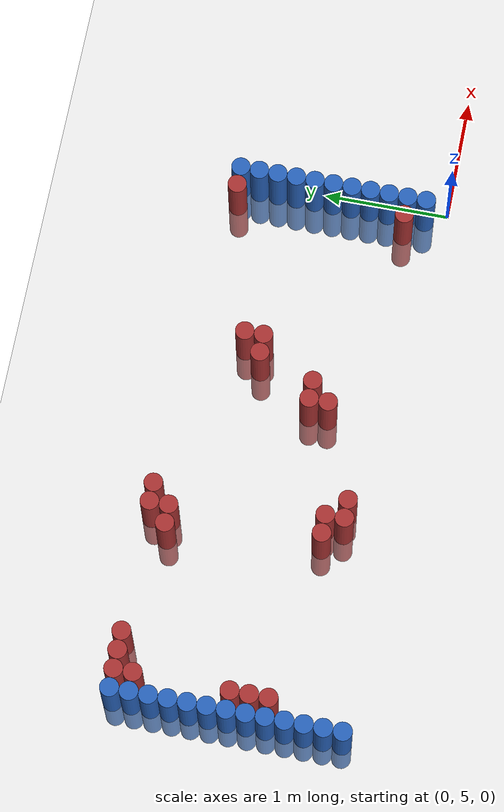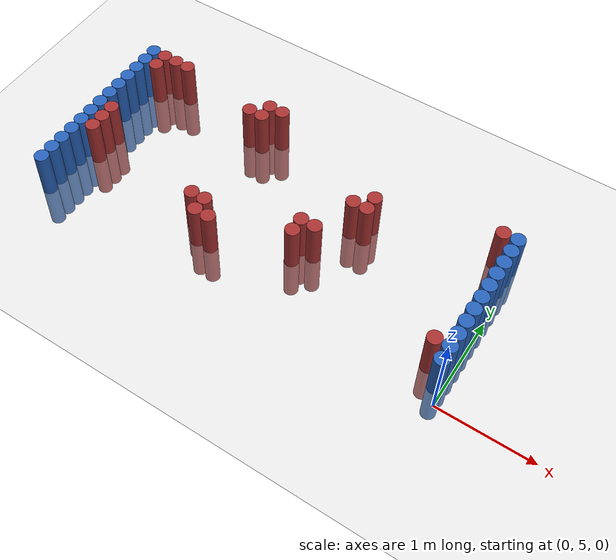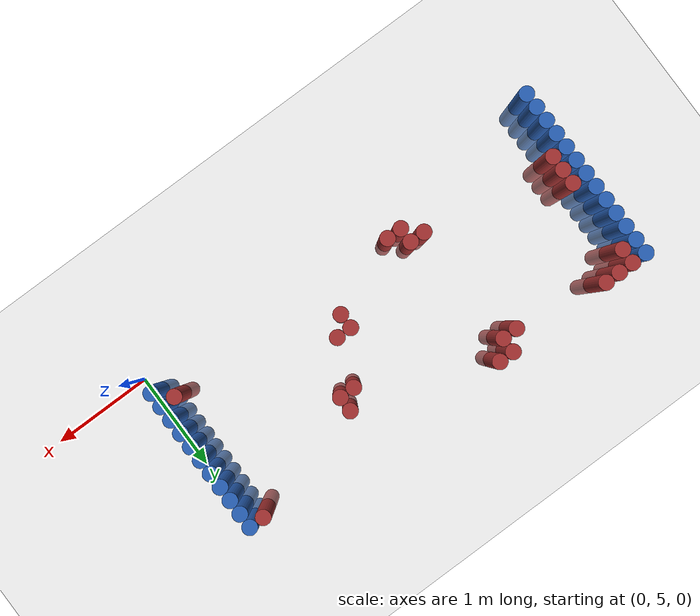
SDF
<sdf version="1.6">
 <world name="default">
  <model name="ground_plane">
   <static>1</static>
   <link name="link">
    <collision name="collision">
     <geometry><plane><normal>0 0 1</normal><size>100 100</size></plane></geometry>
     <surface><friction><ode><mu>100</mu><mu2>50</mu2></ode></friction></surface>
    </collision>
    <visual name="visual">
     <cast_shadows>0</cast_shadows>
     <geometry><plane><normal>0 0 1</normal><size>100 100</size></plane></geometry>
     <material>
      <script><uri>file://media/materials/scripts/gazebo.material</uri><name>Gazebo/Grey</name></script>
     </material>
    </visual>
   </link>
  </model>
  <model name="unit_cylinder_95">
   <static>1</static>
   <pose>-4.425000 5.025000 0.000000 0.000000 0.000000 0.000000</pose>
   <link name="link">
    <inertial>
     <mass>1</mass>
     <inertia><ixx>0.145833</ixx><ixy>0</ixy><ixz>0</ixz><iyy>0.145833</iyy><iyz>0</iyz><izz>0.125</izz></inertia>
    </inertial>
    <collision name="collision">
     <geometry><cylinder><radius>0.075000</radius><length>1</length></cylinder></geometry>
    </collision>
    <visual name="visual">
     <geometry><cylinder><radius>0.075000</radius><length>1</length></cylinder></geometry>
     <material>
      <ambient>0.152000 0.379000 0.720000 1</ambient>
      <diffuse>0.152000 0.379000 0.720000 1</diffuse>
     </material>
     <material>
      <script><name>Gazebo/Grey</name><uri>file://media/materials/scripts/gazebo.material</uri></script>
     </material>
    </visual>
   </link>
  </model>
  <model name="unit_cylinder_96">
   <static>1</static>
   <pose>-4.425000 5.175000 0.000000 0.000000 0.000000 0.000000</pose>
   <link name="link">
    <inertial>
     <mass>1</mass>
     <inertia><ixx>0.145833</ixx><ixy>0</ixy><ixz>0</ixz><iyy>0.145833</iyy><iyz>0</iyz><izz>0.125</izz></inertia>
    </inertial>
    <collision name="collision">
     <geometry><cylinder><radius>0.075000</radius><length>1</length></cylinder></geometry>
    </collision>
    <visual name="visual">
     <geometry><cylinder><radius>0.075000</radius><length>1</length></cylinder></geometry>
     <material>
      <ambient>0.152000 0.379000 0.720000 1</ambient>
      <diffuse>0.152000 0.379000 0.720000 1</diffuse>
     </material>
     <material>
      <script><name>Gazebo/Grey</name><uri>file://media/materials/scripts/gazebo.material</uri></script>
     </material>
    </visual>
   </link>
  </model>
  <model name="unit_cylinder_97">
   <static>1</static>
   <pose>-4.425000 5.325000 0.000000 0.000000 0.000000 0.000000</pose>
   <link name="link">
    <inertial>
     <mass>1</mass>
     <inertia><ixx>0.145833</ixx><ixy>0</ixy><ixz>0</ixz><iyy>0.145833</iyy><iyz>0</iyz><izz>0.125</izz></inertia>
    </inertial>
    <collision name="collision">
     <geometry><cylinder><radius>0.075000</radius><length>1</length></cylinder></geometry>
    </collision>
    <visual name="visual">
     <geometry><cylinder><radius>0.075000</radius><length>1</length></cylinder></geometry>
     <material>
      <ambient>0.152000 0.379000 0.720000 1</ambient>
      <diffuse>0.152000 0.379000 0.720000 1</diffuse>
     </material>
     <material>
      <script><name>Gazebo/Grey</name><uri>file://media/materials/scripts/gazebo.material</uri></script>
     </material>
    </visual>
   </link>
  </model>
  <model name="unit_cylinder_98">
   <static>1</static>
   <pose>-4.425000 5.475000 0.000000 0.000000 0.000000 0.000000</pose>
   <link name="link">
    <inertial>
     <mass>1</mass>
     <inertia><ixx>0.145833</ixx><ixy>0</ixy><ixz>0</ixz><iyy>0.145833</iyy><iyz>0</iyz><izz>0.125</izz></inertia>
    </inertial>
    <collision name="collision">
     <geometry><cylinder><radius>0.075000</radius><length>1</length></cylinder></geometry>
    </collision>
    <visual name="visual">
     <geometry><cylinder><radius>0.075000</radius><length>1</length></cylinder></geometry>
     <material>
      <ambient>0.152000 0.379000 0.720000 1</ambient>
      <diffuse>0.152000 0.379000 0.720000 1</diffuse>
     </material>
     <material>
      <script><name>Gazebo/Grey</name><uri>file://media/materials/scripts/gazebo.material</uri></script>
     </material>
    </visual>
   </link>
  </model>
  <model name="unit_cylinder_99">
   <static>1</static>
   <pose>-4.425000 5.625000 0.000000 0.000000 0.000000 0.000000</pose>
   <link name="link">
    <inertial>
     <mass>1</mass>
     <inertia><ixx>0.145833</ixx><ixy>0</ixy><ixz>0</ixz><iyy>0.145833</iyy><iyz>0</iyz><izz>0.125</izz></inertia>
    </inertial>
    <collision name="collision">
     <geometry><cylinder><radius>0.075000</radius><length>1</length></cylinder></geometry>
    </collision>
    <visual name="visual">
     <geometry><cylinder><radius>0.075000</radius><length>1</length></cylinder></geometry>
     <material>
      <ambient>0.152000 0.379000 0.720000 1</ambient>
      <diffuse>0.152000 0.379000 0.720000 1</diffuse>
     </material>
     <material>
      <script><name>Gazebo/Grey</name><uri>file://media/materials/scripts/gazebo.material</uri></script>
     </material>
    </visual>
   </link>
  </model>
  <model name="unit_cylinder_100">
   <static>1</static>
   <pose>-4.425000 5.775000 0.000000 0.000000 0.000000 0.000000</pose>
   <link name="link">
    <inertial>
     <mass>1</mass>
     <inertia><ixx>0.145833</ixx><ixy>0</ixy><ixz>0</ixz><iyy>0.145833</iyy><iyz>0</iyz><izz>0.125</izz></inertia>
    </inertial>
    <collision name="collision">
     <geometry><cylinder><radius>0.075000</radius><length>1</length></cylinder></geometry>
    </collision>
    <visual name="visual">
     <geometry><cylinder><radius>0.075000</radius><length>1</length></cylinder></geometry>
     <material>
      <ambient>0.152000 0.379000 0.720000 1</ambient>
      <diffuse>0.152000 0.379000 0.720000 1</diffuse>
     </material>
     <material>
      <script><name>Gazebo/Grey</name><uri>file://media/materials/scripts/gazebo.material</uri></script>
     </material>
    </visual>
   </link>
  </model>
  <model name="unit_cylinder_101">
   <static>1</static>
   <pose>-4.425000 5.925000 0.000000 0.000000 0.000000 0.000000</pose>
   <link name="link">
    <inertial>
     <mass>1</mass>
     <inertia><ixx>0.145833</ixx><ixy>0</ixy><ixz>0</ixz><iyy>0.145833</iyy><iyz>0</iyz><izz>0.125</izz></inertia>
    </inertial>
    <collision name="collision">
     <geometry><cylinder><radius>0.075000</radius><length>1</length></cylinder></geometry>
    </collision>
    <visual name="visual">
     <geometry><cylinder><radius>0.075000</radius><length>1</length></cylinder></geometry>
     <material>
      <ambient>0.152000 0.379000 0.720000 1</ambient>
      <diffuse>0.152000 0.379000 0.720000 1</diffuse>
     </material>
     <material>
      <script><name>Gazebo/Grey</name><uri>file://media/materials/scripts/gazebo.material</uri></script>
     </material>
    </visual>
   </link>
  </model>
  <model name="unit_cylinder_102">
   <static>1</static>
   <pose>-4.425000 6.075000 0.000000 0.000000 0.000000 0.000000</pose>
   <link name="link">
    <inertial>
     <mass>1</mass>
     <inertia><ixx>0.145833</ixx><ixy>0</ixy><ixz>0</ixz><iyy>0.145833</iyy><iyz>0</iyz><izz>0.125</izz></inertia>
    </inertial>
    <collision name="collision">
     <geometry><cylinder><radius>0.075000</radius><length>1</length></cylinder></geometry>
    </collision>
    <visual name="visual">
     <geometry><cylinder><radius>0.075000</radius><length>1</length></cylinder></geometry>
     <material>
      <ambient>0.152000 0.379000 0.720000 1</ambient>
      <diffuse>0.152000 0.379000 0.720000 1</diffuse>
     </material>
     <material>
      <script><name>Gazebo/Grey</name><uri>file://media/materials/scripts/gazebo.material</uri></script>
     </material>
    </visual>
   </link>
  </model>
  <model name="unit_cylinder_103">
   <static>1</static>
   <pose>-4.425000 6.225000 0.000000 0.000000 0.000000 0.000000</pose>
   <link name="link">
    <inertial>
     <mass>1</mass>
     <inertia><ixx>0.145833</ixx><ixy>0</ixy><ixz>0</ixz><iyy>0.145833</iyy><iyz>0</iyz><izz>0.125</izz></inertia>
    </inertial>
    <collision name="collision">
     <geometry><cylinder><radius>0.075000</radius><length>1</length></cylinder></geometry>
    </collision>
    <visual name="visual">
     <geometry><cylinder><radius>0.075000</radius><length>1</length></cylinder></geometry>
     <material>
      <ambient>0.152000 0.379000 0.720000 1</ambient>
      <diffuse>0.152000 0.379000 0.720000 1</diffuse>
     </material>
     <material>
      <script><name>Gazebo/Grey</name><uri>file://media/materials/scripts/gazebo.material</uri></script>
     </material>
    </visual>
   </link>
  </model>
  <model name="unit_cylinder_104">
   <static>1</static>
   <pose>-4.425000 6.375000 0.000000 0.000000 0.000000 0.000000</pose>
   <link name="link">
    <inertial>
     <mass>1</mass>
     <inertia><ixx>0.145833</ixx><ixy>0</ixy><ixz>0</ixz><iyy>0.145833</iyy><iyz>0</iyz><izz>0.125</izz></inertia>
    </inertial>
    <collision name="collision">
     <geometry><cylinder><radius>0.075000</radius><length>1</length></cylinder></geometry>
    </collision>
    <visual name="visual">
     <geometry><cylinder><radius>0.075000</radius><length>1</length></cylinder></geometry>
     <material>
      <ambient>0.152000 0.379000 0.720000 1</ambient>
      <diffuse>0.152000 0.379000 0.720000 1</diffuse>
     </material>
     <material>
      <script><name>Gazebo/Grey</name><uri>file://media/materials/scripts/gazebo.material</uri></script>
     </material>
    </visual>
   </link>
  </model>
  <model name="unit_cylinder_105">
   <static>1</static>
   <pose>-4.425000 6.525000 0.000000 0.000000 0.000000 0.000000</pose>
   <link name="link">
    <inertial>
     <mass>1</mass>
     <inertia><ixx>0.145833</ixx><ixy>0</ixy><ixz>0</ixz><iyy>0.145833</iyy><iyz>0</iyz><izz>0.125</izz></inertia>
    </inertial>
    <collision name="collision">
     <geometry><cylinder><radius>0.075000</radius><length>1</length></cylinder></geometry>
    </collision>
    <visual name="visual">
     <geometry><cylinder><radius>0.075000</radius><length>1</length></cylinder></geometry>
     <material>
      <ambient>0.152000 0.379000 0.720000 1</ambient>
      <diffuse>0.152000 0.379000 0.720000 1</diffuse>
     </material>
     <material>
      <script><name>Gazebo/Grey</name><uri>file://media/materials/scripts/gazebo.material</uri></script>
     </material>
    </visual>
   </link>
  </model>
  <model name="unit_cylinder_106">
   <static>1</static>
   <pose>-4.425000 6.675000 0.000000 0.000000 0.000000 0.000000</pose>
   <link name="link">
    <inertial>
     <mass>1</mass>
     <inertia><ixx>0.145833</ixx><ixy>0</ixy><ixz>0</ixz><iyy>0.145833</iyy><iyz>0</iyz><izz>0.125</izz></inertia>
    </inertial>
    <collision name="collision">
     <geometry><cylinder><radius>0.075000</radius><length>1</length></cylinder></geometry>
    </collision>
    <visual name="visual">
     <geometry><cylinder><radius>0.075000</radius><length>1</length></cylinder></geometry>
     <material>
      <ambient>0.152000 0.379000 0.720000 1</ambient>
      <diffuse>0.152000 0.379000 0.720000 1</diffuse>
     </material>
     <material>
      <script><name>Gazebo/Grey</name><uri>file://media/materials/scripts/gazebo.material</uri></script>
     </material>
    </visual>
   </link>
  </model>
  <model name="unit_cylinder_107">
   <static>1</static>
   <pose>-4.425000 6.825000 0.000000 0.000000 0.000000 0.000000</pose>
   <link name="link">
    <inertial>
     <mass>1</mass>
     <inertia><ixx>0.145833</ixx><ixy>0</ixy><ixz>0</ixz><iyy>0.145833</iyy><iyz>0</iyz><izz>0.125</izz></inertia>
    </inertial>
    <collision name="collision">
     <geometry><cylinder><radius>0.075000</radius><length>1</length></cylinder></geometry>
    </collision>
    <visual name="visual">
     <geometry><cylinder><radius>0.075000</radius><length>1</length></cylinder></geometry>
     <material>
      <ambient>0.152000 0.379000 0.720000 1</ambient>
      <diffuse>0.152000 0.379000 0.720000 1</diffuse>
     </material>
     <material>
      <script><name>Gazebo/Grey</name><uri>file://media/materials/scripts/gazebo.material</uri></script>
     </material>
    </visual>
   </link>
  </model>
  <model name="unit_cylinder_126">
   <static>1</static>
   <pose>-4.275000 5.625000 0.000000 0.000000 0.000000 0.000000</pose>
   <link name="link">
    <inertial>
     <mass>1</mass>
     <inertia><ixx>0.145833</ixx><ixy>0</ixy><ixz>0</ixz><iyy>0.145833</iyy><iyz>0</iyz><izz>0.125</izz></inertia>
    </inertial>
    <collision name="collision">
     <geometry><cylinder><radius>0.075000</radius><length>1</length></cylinder></geometry>
    </collision>
    <visual name="visual">
     <geometry><cylinder><radius>0.075000</radius><length>1</length></cylinder></geometry>
     <material>
      <ambient>0.648000 0.192000 0.192000 1</ambient>
      <diffuse>0.648000 0.192000 0.192000 1</diffuse>
     </material>
     <material>
      <script><name>Gazebo/Grey</name><uri>file://media/materials/scripts/gazebo.material</uri></script>
     </material>
    </visual>
   </link>
  </model>
  <model name="unit_cylinder_127">
   <static>1</static>
   <pose>-4.275000 5.775000 0.000000 0.000000 0.000000 0.000000</pose>
   <link name="link">
    <inertial>
     <mass>1</mass>
     <inertia><ixx>0.145833</ixx><ixy>0</ixy><ixz>0</ixz><iyy>0.145833</iyy><iyz>0</iyz><izz>0.125</izz></inertia>
    </inertial>
    <collision name="collision">
     <geometry><cylinder><radius>0.075000</radius><length>1</length></cylinder></geometry>
    </collision>
    <visual name="visual">
     <geometry><cylinder><radius>0.075000</radius><length>1</length></cylinder></geometry>
     <material>
      <ambient>0.648000 0.192000 0.192000 1</ambient>
      <diffuse>0.648000 0.192000 0.192000 1</diffuse>
     </material>
     <material>
      <script><name>Gazebo/Grey</name><uri>file://media/materials/scripts/gazebo.material</uri></script>
     </material>
    </visual>
   </link>
  </model>
  <model name="unit_cylinder_128">
   <static>1</static>
   <pose>-4.275000 5.925000 0.000000 0.000000 0.000000 0.000000</pose>
   <link name="link">
    <inertial>
     <mass>1</mass>
     <inertia><ixx>0.145833</ixx><ixy>0</ixy><ixz>0</ixz><iyy>0.145833</iyy><iyz>0</iyz><izz>0.125</izz></inertia>
    </inertial>
    <collision name="collision">
     <geometry><cylinder><radius>0.075000</radius><length>1</length></cylinder></geometry>
    </collision>
    <visual name="visual">
     <geometry><cylinder><radius>0.075000</radius><length>1</length></cylinder></geometry>
     <material>
      <ambient>0.648000 0.192000 0.192000 1</ambient>
      <diffuse>0.648000 0.192000 0.192000 1</diffuse>
     </material>
     <material>
      <script><name>Gazebo/Grey</name><uri>file://media/materials/scripts/gazebo.material</uri></script>
     </material>
    </visual>
   </link>
  </model>
  <model name="unit_cylinder_129">
   <static>1</static>
   <pose>-4.275000 6.675000 0.000000 0.000000 0.000000 0.000000</pose>
   <link name="link">
    <inertial>
     <mass>1</mass>
     <inertia><ixx>0.145833</ixx><ixy>0</ixy><ixz>0</ixz><iyy>0.145833</iyy><iyz>0</iyz><izz>0.125</izz></inertia>
    </inertial>
    <collision name="collision">
     <geometry><cylinder><radius>0.075000</radius><length>1</length></cylinder></geometry>
    </collision>
    <visual name="visual">
     <geometry><cylinder><radius>0.075000</radius><length>1</length></cylinder></geometry>
     <material>
      <ambient>0.648000 0.192000 0.192000 1</ambient>
      <diffuse>0.648000 0.192000 0.192000 1</diffuse>
     </material>
     <material>
      <script><name>Gazebo/Grey</name><uri>file://media/materials/scripts/gazebo.material</uri></script>
     </material>
    </visual>
   </link>
  </model>
  <model name="unit_cylinder_130">
   <static>1</static>
   <pose>-4.275000 6.825000 0.000000 0.000000 0.000000 0.000000</pose>
   <link name="link">
    <inertial>
     <mass>1</mass>
     <inertia><ixx>0.145833</ixx><ixy>0</ixy><ixz>0</ixz><iyy>0.145833</iyy><iyz>0</iyz><izz>0.125</izz></inertia>
    </inertial>
    <collision name="collision">
     <geometry><cylinder><radius>0.075000</radius><length>1</length></cylinder></geometry>
    </collision>
    <visual name="visual">
     <geometry><cylinder><radius>0.075000</radius><length>1</length></cylinder></geometry>
     <material>
      <ambient>0.648000 0.192000 0.192000 1</ambient>
      <diffuse>0.648000 0.192000 0.192000 1</diffuse>
     </material>
     <material>
      <script><name>Gazebo/Grey</name><uri>file://media/materials/scripts/gazebo.material</uri></script>
     </material>
    </visual>
   </link>
  </model>
  <model name="unit_cylinder_140">
   <static>1</static>
   <pose>-4.125000 6.825000 0.000000 0.000000 0.000000 0.000000</pose>
   <link name="link">
    <inertial>
     <mass>1</mass>
     <inertia><ixx>0.145833</ixx><ixy>0</ixy><ixz>0</ixz><iyy>0.145833</iyy><iyz>0</iyz><izz>0.125</izz></inertia>
    </inertial>
    <collision name="collision">
     <geometry><cylinder><radius>0.075000</radius><length>1</length></cylinder></geometry>
    </collision>
    <visual name="visual">
     <geometry><cylinder><radius>0.075000</radius><length>1</length></cylinder></geometry>
     <material>
      <ambient>0.648000 0.192000 0.192000 1</ambient>
      <diffuse>0.648000 0.192000 0.192000 1</diffuse>
     </material>
     <material>
      <script><name>Gazebo/Grey</name><uri>file://media/materials/scripts/gazebo.material</uri></script>
     </material>
    </visual>
   </link>
  </model>
  <model name="unit_cylinder_145">
   <static>1</static>
   <pose>-3.975000 6.825000 0.000000 0.000000 0.000000 0.000000</pose>
   <link name="link">
    <inertial>
     <mass>1</mass>
     <inertia><ixx>0.145833</ixx><ixy>0</ixy><ixz>0</ixz><iyy>0.145833</iyy><iyz>0</iyz><izz>0.125</izz></inertia>
    </inertial>
    <collision name="collision">
     <geometry><cylinder><radius>0.075000</radius><length>1</length></cylinder></geometry>
    </collision>
    <visual name="visual">
     <geometry><cylinder><radius>0.075000</radius><length>1</length></cylinder></geometry>
     <material>
      <ambient>0.648000 0.192000 0.192000 1</ambient>
      <diffuse>0.648000 0.192000 0.192000 1</diffuse>
     </material>
     <material>
      <script><name>Gazebo/Grey</name><uri>file://media/materials/scripts/gazebo.material</uri></script>
     </material>
    </visual>
   </link>
  </model>
  <model name="unit_cylinder_169">
   <static>1</static>
   <pose>-3.075000 6.675000 0.000000 0.000000 0.000000 0.000000</pose>
   <link name="link">
    <inertial>
     <mass>1</mass>
     <inertia><ixx>0.145833</ixx><ixy>0</ixy><ixz>0</ixz><iyy>0.145833</iyy><iyz>0</iyz><izz>0.125</izz></inertia>
    </inertial>
    <collision name="collision">
     <geometry><cylinder><radius>0.075000</radius><length>1</length></cylinder></geometry>
    </collision>
    <visual name="visual">
     <geometry><cylinder><radius>0.075000</radius><length>1</length></cylinder></geometry>
     <material>
      <ambient>0.648000 0.192000 0.192000 1</ambient>
      <diffuse>0.648000 0.192000 0.192000 1</diffuse>
     </material>
     <material>
      <script><name>Gazebo/Grey</name><uri>file://media/materials/scripts/gazebo.material</uri></script>
     </material>
    </visual>
   </link>
  </model>
  <model name="unit_cylinder_170">
   <static>1</static>
   <pose>-2.925000 5.475000 0.000000 0.000000 0.000000 0.000000</pose>
   <link name="link">
    <inertial>
     <mass>1</mass>
     <inertia><ixx>0.145833</ixx><ixy>0</ixy><ixz>0</ixz><iyy>0.145833</iyy><iyz>0</iyz><izz>0.125</izz></inertia>
    </inertial>
    <collision name="collision">
     <geometry><cylinder><radius>0.075000</radius><length>1</length></cylinder></geometry>
    </collision>
    <visual name="visual">
     <geometry><cylinder><radius>0.075000</radius><length>1</length></cylinder></geometry>
     <material>
      <ambient>0.648000 0.192000 0.192000 1</ambient>
      <diffuse>0.648000 0.192000 0.192000 1</diffuse>
     </material>
     <material>
      <script><name>Gazebo/Grey</name><uri>file://media/materials/scripts/gazebo.material</uri></script>
     </material>
    </visual>
   </link>
  </model>
  <model name="unit_cylinder_171">
   <static>1</static>
   <pose>-2.925000 6.675000 0.000000 0.000000 0.000000 0.000000</pose>
   <link name="link">
    <inertial>
     <mass>1</mass>
     <inertia><ixx>0.145833</ixx><ixy>0</ixy><ixz>0</ixz><iyy>0.145833</iyy><iyz>0</iyz><izz>0.125</izz></inertia>
    </inertial>
    <collision name="collision">
     <geometry><cylinder><radius>0.075000</radius><length>1</length></cylinder></geometry>
    </collision>
    <visual name="visual">
     <geometry><cylinder><radius>0.075000</radius><length>1</length></cylinder></geometry>
     <material>
      <ambient>0.648000 0.192000 0.192000 1</ambient>
      <diffuse>0.648000 0.192000 0.192000 1</diffuse>
     </material>
     <material>
      <script><name>Gazebo/Grey</name><uri>file://media/materials/scripts/gazebo.material</uri></script>
     </material>
    </visual>
   </link>
  </model>
  <model name="unit_cylinder_172">
   <static>1</static>
   <pose>-2.925000 6.825000 0.000000 0.000000 0.000000 0.000000</pose>
   <link name="link">
    <inertial>
     <mass>1</mass>
     <inertia><ixx>0.145833</ixx><ixy>0</ixy><ixz>0</ixz><iyy>0.145833</iyy><iyz>0</iyz><izz>0.125</izz></inertia>
    </inertial>
    <collision name="collision">
     <geometry><cylinder><radius>0.075000</radius><length>1</length></cylinder></geometry>
    </collision>
    <visual name="visual">
     <geometry><cylinder><radius>0.075000</radius><length>1</length></cylinder></geometry>
     <material>
      <ambient>0.648000 0.192000 0.192000 1</ambient>
      <diffuse>0.648000 0.192000 0.192000 1</diffuse>
     </material>
     <material>
      <script><name>Gazebo/Grey</name><uri>file://media/materials/scripts/gazebo.material</uri></script>
     </material>
    </visual>
   </link>
  </model>
  <model name="unit_cylinder_174">
   <static>1</static>
   <pose>-2.775000 5.325000 0.000000 0.000000 0.000000 0.000000</pose>
   <link name="link">
    <inertial>
     <mass>1</mass>
     <inertia><ixx>0.145833</ixx><ixy>0</ixy><ixz>0</ixz><iyy>0.145833</iyy><iyz>0</iyz><izz>0.125</izz></inertia>
    </inertial>
    <collision name="collision">
     <geometry><cylinder><radius>0.075000</radius><length>1</length></cylinder></geometry>
    </collision>
    <visual name="visual">
     <geometry><cylinder><radius>0.075000</radius><length>1</length></cylinder></geometry>
     <material>
      <ambient>0.648000 0.192000 0.192000 1</ambient>
      <diffuse>0.648000 0.192000 0.192000 1</diffuse>
     </material>
     <material>
      <script><name>Gazebo/Grey</name><uri>file://media/materials/scripts/gazebo.material</uri></script>
     </material>
    </visual>
   </link>
  </model>
  <model name="unit_cylinder_175">
   <static>1</static>
   <pose>-2.775000 5.475000 0.000000 0.000000 0.000000 0.000000</pose>
   <link name="link">
    <inertial>
     <mass>1</mass>
     <inertia><ixx>0.145833</ixx><ixy>0</ixy><ixz>0</ixz><iyy>0.145833</iyy><iyz>0</iyz><izz>0.125</izz></inertia>
    </inertial>
    <collision name="collision">
     <geometry><cylinder><radius>0.075000</radius><length>1</length></cylinder></geometry>
    </collision>
    <visual name="visual">
     <geometry><cylinder><radius>0.075000</radius><length>1</length></cylinder></geometry>
     <material>
      <ambient>0.648000 0.192000 0.192000 1</ambient>
      <diffuse>0.648000 0.192000 0.192000 1</diffuse>
     </material>
     <material>
      <script><name>Gazebo/Grey</name><uri>file://media/materials/scripts/gazebo.material</uri></script>
     </material>
    </visual>
   </link>
  </model>
  <model name="unit_cylinder_176">
   <static>1</static>
   <pose>-2.775000 6.825000 0.000000 0.000000 0.000000 0.000000</pose>
   <link name="link">
    <inertial>
     <mass>1</mass>
     <inertia><ixx>0.145833</ixx><ixy>0</ixy><ixz>0</ixz><iyy>0.145833</iyy><iyz>0</iyz><izz>0.125</izz></inertia>
    </inertial>
    <collision name="collision">
     <geometry><cylinder><radius>0.075000</radius><length>1</length></cylinder></geometry>
    </collision>
    <visual name="visual">
     <geometry><cylinder><radius>0.075000</radius><length>1</length></cylinder></geometry>
     <material>
      <ambient>0.648000 0.192000 0.192000 1</ambient>
      <diffuse>0.648000 0.192000 0.192000 1</diffuse>
     </material>
     <material>
      <script><name>Gazebo/Grey</name><uri>file://media/materials/scripts/gazebo.material</uri></script>
     </material>
    </visual>
   </link>
  </model>
  <model name="unit_cylinder_180">
   <static>1</static>
   <pose>-2.625000 5.325000 0.000000 0.000000 0.000000 0.000000</pose>
   <link name="link">
    <inertial>
     <mass>1</mass>
     <inertia><ixx>0.145833</ixx><ixy>0</ixy><ixz>0</ixz><iyy>0.145833</iyy><iyz>0</iyz><izz>0.125</izz></inertia>
    </inertial>
    <collision name="collision">
     <geometry><cylinder><radius>0.075000</radius><length>1</length></cylinder></geometry>
    </collision>
    <visual name="visual">
     <geometry><cylinder><radius>0.075000</radius><length>1</length></cylinder></geometry>
     <material>
      <ambient>0.648000 0.192000 0.192000 1</ambient>
      <diffuse>0.648000 0.192000 0.192000 1</diffuse>
     </material>
     <material>
      <script><name>Gazebo/Grey</name><uri>file://media/materials/scripts/gazebo.material</uri></script>
     </material>
    </visual>
   </link>
  </model>
  <model name="unit_cylinder_187">
   <static>1</static>
   <pose>-1.875000 5.625000 0.000000 0.000000 0.000000 0.000000</pose>
   <link name="link">
    <inertial>
     <mass>1</mass>
     <inertia><ixx>0.145833</ixx><ixy>0</ixy><ixz>0</ixz><iyy>0.145833</iyy><iyz>0</iyz><izz>0.125</izz></inertia>
    </inertial>
    <collision name="collision">
     <geometry><cylinder><radius>0.075000</radius><length>1</length></cylinder></geometry>
    </collision>
    <visual name="visual">
     <geometry><cylinder><radius>0.075000</radius><length>1</length></cylinder></geometry>
     <material>
      <ambient>0.648000 0.192000 0.192000 1</ambient>
      <diffuse>0.648000 0.192000 0.192000 1</diffuse>
     </material>
     <material>
      <script><name>Gazebo/Grey</name><uri>file://media/materials/scripts/gazebo.material</uri></script>
     </material>
    </visual>
   </link>
  </model>
  <model name="unit_cylinder_188">
   <static>1</static>
   <pose>-1.875000 5.775000 0.000000 0.000000 0.000000 0.000000</pose>
   <link name="link">
    <inertial>
     <mass>1</mass>
     <inertia><ixx>0.145833</ixx><ixy>0</ixy><ixz>0</ixz><iyy>0.145833</iyy><iyz>0</iyz><izz>0.125</izz></inertia>
    </inertial>
    <collision name="collision">
     <geometry><cylinder><radius>0.075000</radius><length>1</length></cylinder></geometry>
    </collision>
    <visual name="visual">
     <geometry><cylinder><radius>0.075000</radius><length>1</length></cylinder></geometry>
     <material>
      <ambient>0.648000 0.192000 0.192000 1</ambient>
      <diffuse>0.648000 0.192000 0.192000 1</diffuse>
     </material>
     <material>
      <script><name>Gazebo/Grey</name><uri>file://media/materials/scripts/gazebo.material</uri></script>
     </material>
    </visual>
   </link>
  </model>
  <model name="unit_cylinder_189">
   <static>1</static>
   <pose>-1.725000 5.775000 0.000000 0.000000 0.000000 0.000000</pose>
   <link name="link">
    <inertial>
     <mass>1</mass>
     <inertia><ixx>0.145833</ixx><ixy>0</ixy><ixz>0</ixz><iyy>0.145833</iyy><iyz>0</iyz><izz>0.125</izz></inertia>
    </inertial>
    <collision name="collision">
     <geometry><cylinder><radius>0.075000</radius><length>1</length></cylinder></geometry>
    </collision>
    <visual name="visual">
     <geometry><cylinder><radius>0.075000</radius><length>1</length></cylinder></geometry>
     <material>
      <ambient>0.648000 0.192000 0.192000 1</ambient>
      <diffuse>0.648000 0.192000 0.192000 1</diffuse>
     </material>
     <material>
      <script><name>Gazebo/Grey</name><uri>file://media/materials/scripts/gazebo.material</uri></script>
     </material>
    </visual>
   </link>
  </model>
  <model name="unit_cylinder_190">
   <static>1</static>
   <pose>-1.575000 6.225000 0.000000 0.000000 0.000000 0.000000</pose>
   <link name="link">
    <inertial>
     <mass>1</mass>
     <inertia><ixx>0.145833</ixx><ixy>0</ixy><ixz>0</ixz><iyy>0.145833</iyy><iyz>0</iyz><izz>0.125</izz></inertia>
    </inertial>
    <collision name="collision">
     <geometry><cylinder><radius>0.075000</radius><length>1</length></cylinder></geometry>
    </collision>
    <visual name="visual">
     <geometry><cylinder><radius>0.075000</radius><length>1</length></cylinder></geometry>
     <material>
      <ambient>0.648000 0.192000 0.192000 1</ambient>
      <diffuse>0.648000 0.192000 0.192000 1</diffuse>
     </material>
     <material>
      <script><name>Gazebo/Grey</name><uri>file://media/materials/scripts/gazebo.material</uri></script>
     </material>
    </visual>
   </link>
  </model>
  <model name="unit_cylinder_191">
   <static>1</static>
   <pose>-1.425000 6.225000 0.000000 0.000000 0.000000 0.000000</pose>
   <link name="link">
    <inertial>
     <mass>1</mass>
     <inertia><ixx>0.145833</ixx><ixy>0</ixy><ixz>0</ixz><iyy>0.145833</iyy><iyz>0</iyz><izz>0.125</izz></inertia>
    </inertial>
    <collision name="collision">
     <geometry><cylinder><radius>0.075000</radius><length>1</length></cylinder></geometry>
    </collision>
    <visual name="visual">
     <geometry><cylinder><radius>0.075000</radius><length>1</length></cylinder></geometry>
     <material>
      <ambient>0.648000 0.192000 0.192000 1</ambient>
      <diffuse>0.648000 0.192000 0.192000 1</diffuse>
     </material>
     <material>
      <script><name>Gazebo/Grey</name><uri>file://media/materials/scripts/gazebo.material</uri></script>
     </material>
    </visual>
   </link>
  </model>
  <model name="unit_cylinder_192">
   <static>1</static>
   <pose>-1.425000 6.375000 0.000000 0.000000 0.000000 0.000000</pose>
   <link name="link">
    <inertial>
     <mass>1</mass>
     <inertia><ixx>0.145833</ixx><ixy>0</ixy><ixz>0</ixz><iyy>0.145833</iyy><iyz>0</iyz><izz>0.125</izz></inertia>
    </inertial>
    <collision name="collision">
     <geometry><cylinder><radius>0.075000</radius><length>1</length></cylinder></geometry>
    </collision>
    <visual name="visual">
     <geometry><cylinder><radius>0.075000</radius><length>1</length></cylinder></geometry>
     <material>
      <ambient>0.648000 0.192000 0.192000 1</ambient>
      <diffuse>0.648000 0.192000 0.192000 1</diffuse>
     </material>
     <material>
      <script><name>Gazebo/Grey</name><uri>file://media/materials/scripts/gazebo.material</uri></script>
     </material>
    </visual>
   </link>
  </model>
  <model name="unit_cylinder_198">
   <static>1</static>
   <pose>-0.225000 5.325000 0.000000 0.000000 0.000000 0.000000</pose>
   <link name="link">
    <inertial>
     <mass>1</mass>
     <inertia><ixx>0.145833</ixx><ixy>0</ixy><ixz>0</ixz><iyy>0.145833</iyy><iyz>0</iyz><izz>0.125</izz></inertia>
    </inertial>
    <collision name="collision">
     <geometry><cylinder><radius>0.075000</radius><length>1</length></cylinder></geometry>
    </collision>
    <visual name="visual">
     <geometry><cylinder><radius>0.075000</radius><length>1</length></cylinder></geometry>
     <material>
      <ambient>0.648000 0.192000 0.192000 1</ambient>
      <diffuse>0.648000 0.192000 0.192000 1</diffuse>
     </material>
     <material>
      <script><name>Gazebo/Grey</name><uri>file://media/materials/scripts/gazebo.material</uri></script>
     </material>
    </visual>
   </link>
  </model>
  <model name="unit_cylinder_199">
   <static>1</static>
   <pose>-0.225000 6.675000 0.000000 0.000000 0.000000 0.000000</pose>
   <link name="link">
    <inertial>
     <mass>1</mass>
     <inertia><ixx>0.145833</ixx><ixy>0</ixy><ixz>0</ixz><iyy>0.145833</iyy><iyz>0</iyz><izz>0.125</izz></inertia>
    </inertial>
    <collision name="collision">
     <geometry><cylinder><radius>0.075000</radius><length>1</length></cylinder></geometry>
    </collision>
    <visual name="visual">
     <geometry><cylinder><radius>0.075000</radius><length>1</length></cylinder></geometry>
     <material>
      <ambient>0.648000 0.192000 0.192000 1</ambient>
      <diffuse>0.648000 0.192000 0.192000 1</diffuse>
     </material>
     <material>
      <script><name>Gazebo/Grey</name><uri>file://media/materials/scripts/gazebo.material</uri></script>
     </material>
    </visual>
   </link>
  </model>
  <model name="unit_cylinder_206">
   <static>1</static>
   <pose>-0.075000 5.175000 0.000000 0.000000 0.000000 0.000000</pose>
   <link name="link">
    <inertial>
     <mass>1</mass>
     <inertia><ixx>0.145833</ixx><ixy>0</ixy><ixz>0</ixz><iyy>0.145833</iyy><iyz>0</iyz><izz>0.125</izz></inertia>
    </inertial>
    <collision name="collision">
     <geometry><cylinder><radius>0.075000</radius><length>1</length></cylinder></geometry>
    </collision>
    <visual name="visual">
     <geometry><cylinder><radius>0.075000</radius><length>1</length></cylinder></geometry>
     <material>
      <ambient>0.152000 0.379000 0.720000 1</ambient>
      <diffuse>0.152000 0.379000 0.720000 1</diffuse>
     </material>
     <material>
      <script><name>Gazebo/Grey</name><uri>file://media/materials/scripts/gazebo.material</uri></script>
     </material>
    </visual>
   </link>
  </model>
  <model name="unit_cylinder_207">
   <static>1</static>
   <pose>-0.075000 5.325000 0.000000 0.000000 0.000000 0.000000</pose>
   <link name="link">
    <inertial>
     <mass>1</mass>
     <inertia><ixx>0.145833</ixx><ixy>0</ixy><ixz>0</ixz><iyy>0.145833</iyy><iyz>0</iyz><izz>0.125</izz></inertia>
    </inertial>
    <collision name="collision">
     <geometry><cylinder><radius>0.075000</radius><length>1</length></cylinder></geometry>
    </collision>
    <visual name="visual">
     <geometry><cylinder><radius>0.075000</radius><length>1</length></cylinder></geometry>
     <material>
      <ambient>0.152000 0.379000 0.720000 1</ambient>
      <diffuse>0.152000 0.379000 0.720000 1</diffuse>
     </material>
     <material>
      <script><name>Gazebo/Grey</name><uri>file://media/materials/scripts/gazebo.material</uri></script>
     </material>
    </visual>
   </link>
  </model>
  <model name="unit_cylinder_208">
   <static>1</static>
   <pose>-0.075000 5.475000 0.000000 0.000000 0.000000 0.000000</pose>
   <link name="link">
    <inertial>
     <mass>1</mass>
     <inertia><ixx>0.145833</ixx><ixy>0</ixy><ixz>0</ixz><iyy>0.145833</iyy><iyz>0</iyz><izz>0.125</izz></inertia>
    </inertial>
    <collision name="collision">
     <geometry><cylinder><radius>0.075000</radius><length>1</length></cylinder></geometry>
    </collision>
    <visual name="visual">
     <geometry><cylinder><radius>0.075000</radius><length>1</length></cylinder></geometry>
     <material>
      <ambient>0.152000 0.379000 0.720000 1</ambient>
      <diffuse>0.152000 0.379000 0.720000 1</diffuse>
     </material>
     <material>
      <script><name>Gazebo/Grey</name><uri>file://media/materials/scripts/gazebo.material</uri></script>
     </material>
    </visual>
   </link>
  </model>
  <model name="unit_cylinder_209">
   <static>1</static>
   <pose>-0.075000 5.625000 0.000000 0.000000 0.000000 0.000000</pose>
   <link name="link">
    <inertial>
     <mass>1</mass>
     <inertia><ixx>0.145833</ixx><ixy>0</ixy><ixz>0</ixz><iyy>0.145833</iyy><iyz>0</iyz><izz>0.125</izz></inertia>
    </inertial>
    <collision name="collision">
     <geometry><cylinder><radius>0.075000</radius><length>1</length></cylinder></geometry>
    </collision>
    <visual name="visual">
     <geometry><cylinder><radius>0.075000</radius><length>1</length></cylinder></geometry>
     <material>
      <ambient>0.152000 0.379000 0.720000 1</ambient>
      <diffuse>0.152000 0.379000 0.720000 1</diffuse>
     </material>
     <material>
      <script><name>Gazebo/Grey</name><uri>file://media/materials/scripts/gazebo.material</uri></script>
     </material>
    </visual>
   </link>
  </model>
  <model name="unit_cylinder_210">
   <static>1</static>
   <pose>-0.075000 5.775000 0.000000 0.000000 0.000000 0.000000</pose>
   <link name="link">
    <inertial>
     <mass>1</mass>
     <inertia><ixx>0.145833</ixx><ixy>0</ixy><ixz>0</ixz><iyy>0.145833</iyy><iyz>0</iyz><izz>0.125</izz></inertia>
    </inertial>
    <collision name="collision">
     <geometry><cylinder><radius>0.075000</radius><length>1</length></cylinder></geometry>
    </collision>
    <visual name="visual">
     <geometry><cylinder><radius>0.075000</radius><length>1</length></cylinder></geometry>
     <material>
      <ambient>0.152000 0.379000 0.720000 1</ambient>
      <diffuse>0.152000 0.379000 0.720000 1</diffuse>
     </material>
     <material>
      <script><name>Gazebo/Grey</name><uri>file://media/materials/scripts/gazebo.material</uri></script>
     </material>
    </visual>
   </link>
  </model>
  <model name="unit_cylinder_211">
   <static>1</static>
   <pose>-0.075000 5.925000 0.000000 0.000000 0.000000 0.000000</pose>
   <link name="link">
    <inertial>
     <mass>1</mass>
     <inertia><ixx>0.145833</ixx><ixy>0</ixy><ixz>0</ixz><iyy>0.145833</iyy><iyz>0</iyz><izz>0.125</izz></inertia>
    </inertial>
    <collision name="collision">
     <geometry><cylinder><radius>0.075000</radius><length>1</length></cylinder></geometry>
    </collision>
    <visual name="visual">
     <geometry><cylinder><radius>0.075000</radius><length>1</length></cylinder></geometry>
     <material>
      <ambient>0.152000 0.379000 0.720000 1</ambient>
      <diffuse>0.152000 0.379000 0.720000 1</diffuse>
     </material>
     <material>
      <script><name>Gazebo/Grey</name><uri>file://media/materials/scripts/gazebo.material</uri></script>
     </material>
    </visual>
   </link>
  </model>
  <model name="unit_cylinder_212">
   <static>1</static>
   <pose>-0.075000 6.075000 0.000000 0.000000 0.000000 0.000000</pose>
   <link name="link">
    <inertial>
     <mass>1</mass>
     <inertia><ixx>0.145833</ixx><ixy>0</ixy><ixz>0</ixz><iyy>0.145833</iyy><iyz>0</iyz><izz>0.125</izz></inertia>
    </inertial>
    <collision name="collision">
     <geometry><cylinder><radius>0.075000</radius><length>1</length></cylinder></geometry>
    </collision>
    <visual name="visual">
     <geometry><cylinder><radius>0.075000</radius><length>1</length></cylinder></geometry>
     <material>
      <ambient>0.152000 0.379000 0.720000 1</ambient>
      <diffuse>0.152000 0.379000 0.720000 1</diffuse>
     </material>
     <material>
      <script><name>Gazebo/Grey</name><uri>file://media/materials/scripts/gazebo.material</uri></script>
     </material>
    </visual>
   </link>
  </model>
  <model name="unit_cylinder_213">
   <static>1</static>
   <pose>-0.075000 6.225000 0.000000 0.000000 0.000000 0.000000</pose>
   <link name="link">
    <inertial>
     <mass>1</mass>
     <inertia><ixx>0.145833</ixx><ixy>0</ixy><ixz>0</ixz><iyy>0.145833</iyy><iyz>0</iyz><izz>0.125</izz></inertia>
    </inertial>
    <collision name="collision">
     <geometry><cylinder><radius>0.075000</radius><length>1</length></cylinder></geometry>
    </collision>
    <visual name="visual">
     <geometry><cylinder><radius>0.075000</radius><length>1</length></cylinder></geometry>
     <material>
      <ambient>0.152000 0.379000 0.720000 1</ambient>
      <diffuse>0.152000 0.379000 0.720000 1</diffuse>
     </material>
     <material>
      <script><name>Gazebo/Grey</name><uri>file://media/materials/scripts/gazebo.material</uri></script>
     </material>
    </visual>
   </link>
  </model>
  <model name="unit_cylinder_214">
   <static>1</static>
   <pose>-0.075000 6.375000 0.000000 0.000000 0.000000 0.000000</pose>
   <link name="link">
    <inertial>
     <mass>1</mass>
     <inertia><ixx>0.145833</ixx><ixy>0</ixy><ixz>0</ixz><iyy>0.145833</iyy><iyz>0</iyz><izz>0.125</izz></inertia>
    </inertial>
    <collision name="collision">
     <geometry><cylinder><radius>0.075000</radius><length>1</length></cylinder></geometry>
    </collision>
    <visual name="visual">
     <geometry><cylinder><radius>0.075000</radius><length>1</length></cylinder></geometry>
     <material>
      <ambient>0.152000 0.379000 0.720000 1</ambient>
      <diffuse>0.152000 0.379000 0.720000 1</diffuse>
     </material>
     <material>
      <script><name>Gazebo/Grey</name><uri>file://media/materials/scripts/gazebo.material</uri></script>
     </material>
    </visual>
   </link>
  </model>
  <model name="unit_cylinder_215">
   <static>1</static>
   <pose>-0.075000 6.525000 0.000000 0.000000 0.000000 0.000000</pose>
   <link name="link">
    <inertial>
     <mass>1</mass>
     <inertia><ixx>0.145833</ixx><ixy>0</ixy><ixz>0</ixz><iyy>0.145833</iyy><iyz>0</iyz><izz>0.125</izz></inertia>
    </inertial>
    <collision name="collision">
     <geometry><cylinder><radius>0.075000</radius><length>1</length></cylinder></geometry>
    </collision>
    <visual name="visual">
     <geometry><cylinder><radius>0.075000</radius><length>1</length></cylinder></geometry>
     <material>
      <ambient>0.152000 0.379000 0.720000 1</ambient>
      <diffuse>0.152000 0.379000 0.720000 1</diffuse>
     </material>
     <material>
      <script><name>Gazebo/Grey</name><uri>file://media/materials/scripts/gazebo.material</uri></script>
     </material>
    </visual>
   </link>
  </model>
  <model name="unit_cylinder_216">
   <static>1</static>
   <pose>-0.075000 6.675000 0.000000 0.000000 0.000000 0.000000</pose>
   <link name="link">
    <inertial>
     <mass>1</mass>
     <inertia><ixx>0.145833</ixx><ixy>0</ixy><ixz>0</ixz><iyy>0.145833</iyy><iyz>0</iyz><izz>0.125</izz></inertia>
    </inertial>
    <collision name="collision">
     <geometry><cylinder><radius>0.075000</radius><length>1</length></cylinder></geometry>
    </collision>
    <visual name="visual">
     <geometry><cylinder><radius>0.075000</radius><length>1</length></cylinder></geometry>
     <material>
      <ambient>0.152000 0.379000 0.720000 1</ambient>
      <diffuse>0.152000 0.379000 0.720000 1</diffuse>
     </material>
     <material>
      <script><name>Gazebo/Grey</name><uri>file://media/materials/scripts/gazebo.material</uri></script>
     </material>
    </visual>
   </link>
  </model>
 </world>
</sdf>
